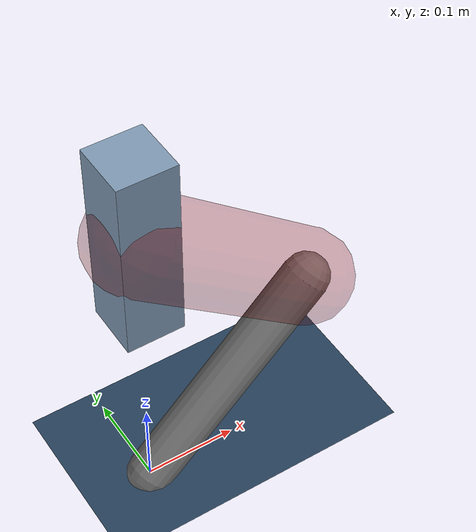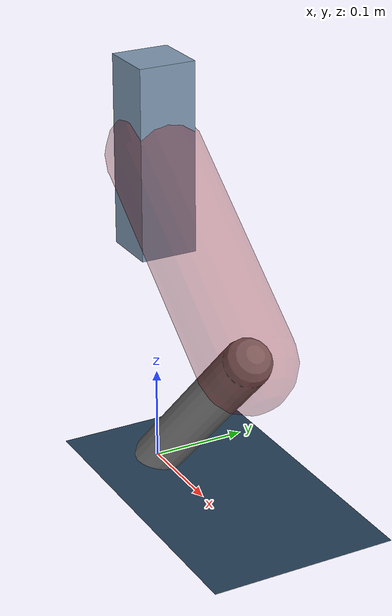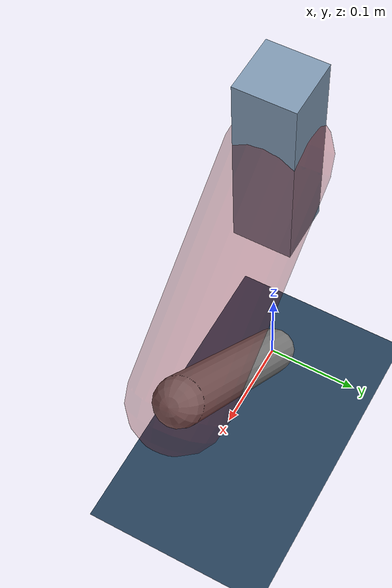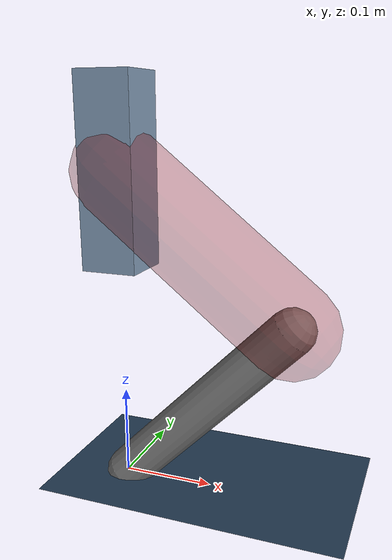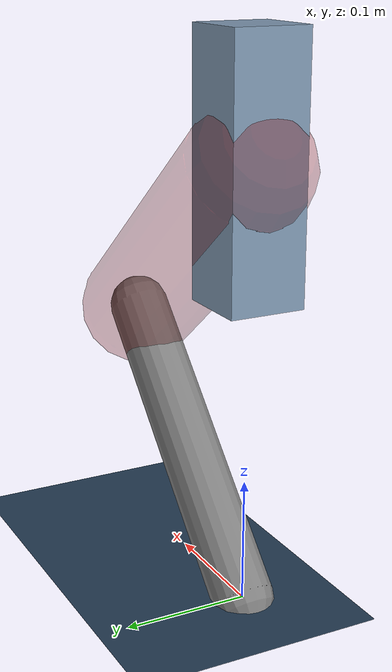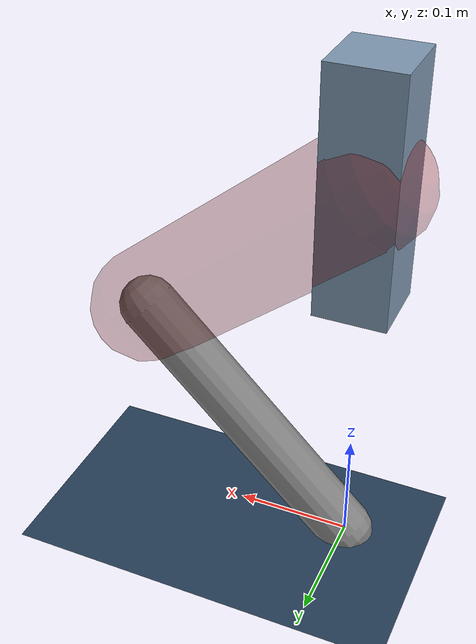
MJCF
<mujoco model="Hopper2D">
	<compiler inertiafromgeom="true" angle="radian" />
	<option timestep="0.001" integrator="implicit" cone="elliptic" solver="Newton" tolerance="1e-10" />

	<default>
		<geom contype="1" conaffinity="1" condim="3" friction="2 0.005 0.0001" solref="0.005 1" />
		<joint limited="true" damping="0.1" />
	</default>

	<asset>
		<texture name="skybox" type="skybox" builtin="gradient" rgb1=".4 .6 .8" rgb2="0 0 0" width="800" height="800" />
		<texture name="grid" type="2d" builtin="checker" rgb1=".1 .2 .3" rgb2=".2 .3 .4" width="300" height="300" mark="edge" markrgb=".2 .3 .4" />
		<material name="ground" texture="grid" texrepeat="1 1" texuniform="true" reflectance="0.1" />
		<material name="leg" rgba="0.5 0.6 0.7 1" />
	</asset>

	<worldbody>

		<geom name="floor" type="plane" size="5 5 0.25" material="ground" />

		<light directional="false" diffuse="0.8 0.8 0.8" specular="0.3 0.3 0.3" pos="0 0 2" dir="0 0 -1" />
		<light mode="targetbodycom" target="base" directional="false" diffuse="0.8 0.8 0.8" specular="0.3 0.3 0.3" pos="0 0 2" dir="0 0 -1" />

		<camera name="fixed" pos="0 -2 1" xyaxes="1 0 0 0 0 1" />
		<camera name="tracking" mode="trackcom" pos="0 -3 1" />

		<body name="root" pos="0 0 0.34277859351837414">
			<joint name="slide_x" type="slide" axis="1 0 0" range="-100 100" />
			<joint name="slide_z" type="slide" axis="0 0 1" range="0 10" />

			<body name="base" pos="0 0 0">
				<geom name="torso" type="box" size="0.03 0.03 0.1" mass="2.83" material="leg" />

				<body name="link1" pos="0 0 0" euler="0 0.6730546930550364 0">
					<joint type="hinge" axis="0 -1 0" pos="0 0 0" name="hinge1" limited="true" range="-3.14 3.14" stiffness="0" damping="0.1" />
					<geom name="thigh" type="capsule" fromto="0 0 0 0.2412859216194302 0 0" size="0.05" rgba="0.5 0 0 0.3" mass="0.8339148040485755" />

					<body name="link2" pos="0.2412859216194302 0 0" euler="0 1.6734300570881426 0">
						<joint type="hinge" axis="0 -1 0" pos="0 0 0" name="hinge2" limited="true" range="-3.14 3.14" stiffness="0" damping="0.1" />
						<geom name="shank" type="capsule" fromto="0 0 0 0.26944368341175745 0 0" size="0.025" mass="0.45845494672940595" />

					</body>
				</body>
			</body>
		</body>
	</worldbody>

	<actuator>
		<motor name="torque1" joint="hinge1" ctrlrange="-71.72269077305106 71.72269077305106" ctrllimited="true" gear="1" />
		<motor name="torque2" joint="hinge2" ctrlrange="-99.15119500994729 99.15119500994729" ctrllimited="true" gear="1" />
	</actuator>
</mujoco>
